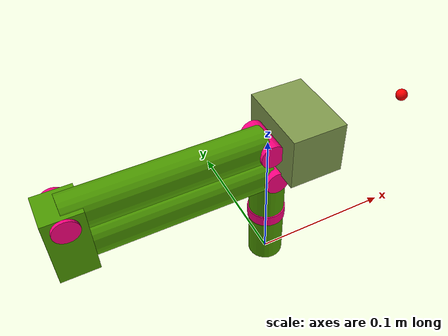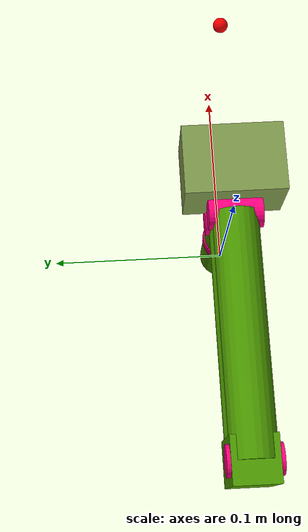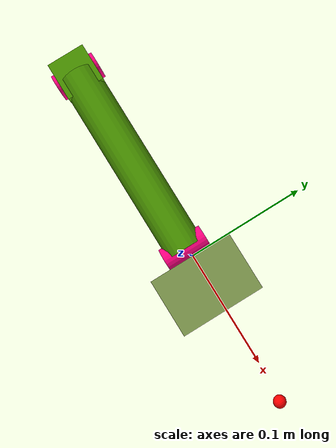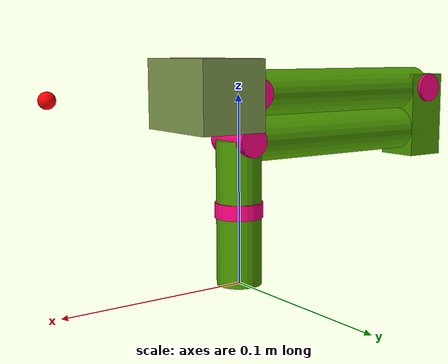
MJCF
<mujoco model="Open Manipulator">
    <compiler inertiafromgeom="true" angle="degree"/>
    <option timestep="0.01" gravity="0 0 -9.81" cone="elliptic" jacobian="auto" solver="Newton" impratio="1.0"/>
    <!--  collision="predefined"  -->
    <option>
        <flag gravity="enable" override="enable"/>
    </option>
    <default>
        <geom contype="1" conaffinity="1" condim="3"/>
        <joint limited="false" damping="0.5" armature="0.1" stiffness="0" frictionloss="0.1"/>
        <motor gear="1 0 0 0 0 0" ctrllimited="false" ctrlrange="-100 100"/>
    </default>
    <worldbody>
        <!--  Link1  -->
        <body name="link1" pos="0 0 0" euler="0 0 0">
            <joint name="L1" pos="0 0 0" type="hinge" axis="0 0 1" limited="false"/>
            <geom type="cylinder" pos="0 0 0.03835" size="0.012 0.03835" rgba="0.3 0.6 0 1"/>
            <geom type="cylinder" pos="0 0 0.04" euler="0 0 0" mass="0.082" size="0.0128 0.004" rgba="1 0 0.5 1"/>
            <!--  Link2  -->
            <body name="link2" pos="0 0 0.0765" euler="90 0 90">
                <joint name="L2" pos="0 0 0" type="hinge" axis="0 0 1" limited="true" range="-150 150"/>
                <geom type="cylinder" pos="0 0.064 0" euler="-90 0 0" size="0.012 0.064" rgba="0.3 0.6 0 1"/>
                <geom type="cylinder" pos="0 0 0" euler="0 0 0" mass="0.082" size="0.008 0.014" rgba="1 0 0.5 1"/>
                <geom type="box" pos="0.008 0.128 0" euler="0 0 0" size="0.024 0.012 0.012" rgba="0.3 0.6 0 1"/>
                <!--  Link3 -->
                <body name="link3" pos="0.024 0.128 0" euler="0 0 -180">
                    <joint name="L3" pos="0 0 0" type="hinge" axis="0 0 1" limited="true" range="-200 100"/>
                    <geom type="cylinder" pos="0 0.062 0" euler="-90 0 0" mass="0.04"  size="0.012 0.062" rgba="0.3 0.6 0 1"/>
                    <geom type="cylinder" pos="0 0 0" euler="0 0 0" mass="0.082" size="0.008 0.014" rgba="1 0 0.5 1"/>
                    <!--  Link4 -->
                    <body name="link4" pos="0 0.124 0" euler="0 0 0">
                        <joint name="L4" pos="0 0 0" type="hinge" axis="0 0 1" limited="true" range="-160 160"/>
                        <geom type="box" pos="0 0.024 0" euler="0 0 0" mass="0.04" size="0.018 0.018 0.026" rgba="0.5 0.6 0.3 1"/>
                        <geom type="cylinder" pos="0 0 0" euler="0 0 0" mass="0.082" size="0.008 0.014" rgba="1 0 0.5 1"/>
                        <!--  Fingers -->
                        <body name="fingers" pos="0 0.1066 0" euler="-90 0 0">
                            <geom type="sphere" pos="0 0 0" euler="0 0 0" mass="0.2" size="0.002" rgba="0.5 0.6 0.3 1"/>
                            <site name="EE" type="sphere" pos="0 0 0" size="0.004" rgba="1 0 0 1"/>
                        </body>
                    </body>
                </body>
            </body>
        </body>
    </worldbody>
    <actuator>
        <motor joint="L1" name="link1" gear="1" ctrllimited="true" ctrlrange="-1193 1193"/>
        <motor joint="L2" name="link2" gear="1" ctrllimited="true" ctrlrange="-1193 1193"/>
        <motor joint="L3" name="link3" gear="1" ctrllimited="true" ctrlrange="-1193 1193"/>
        <motor joint="L4" name="link4" gear="1" ctrllimited="true" ctrlrange="-1193 1193"/>
    </actuator>
</mujoco>
